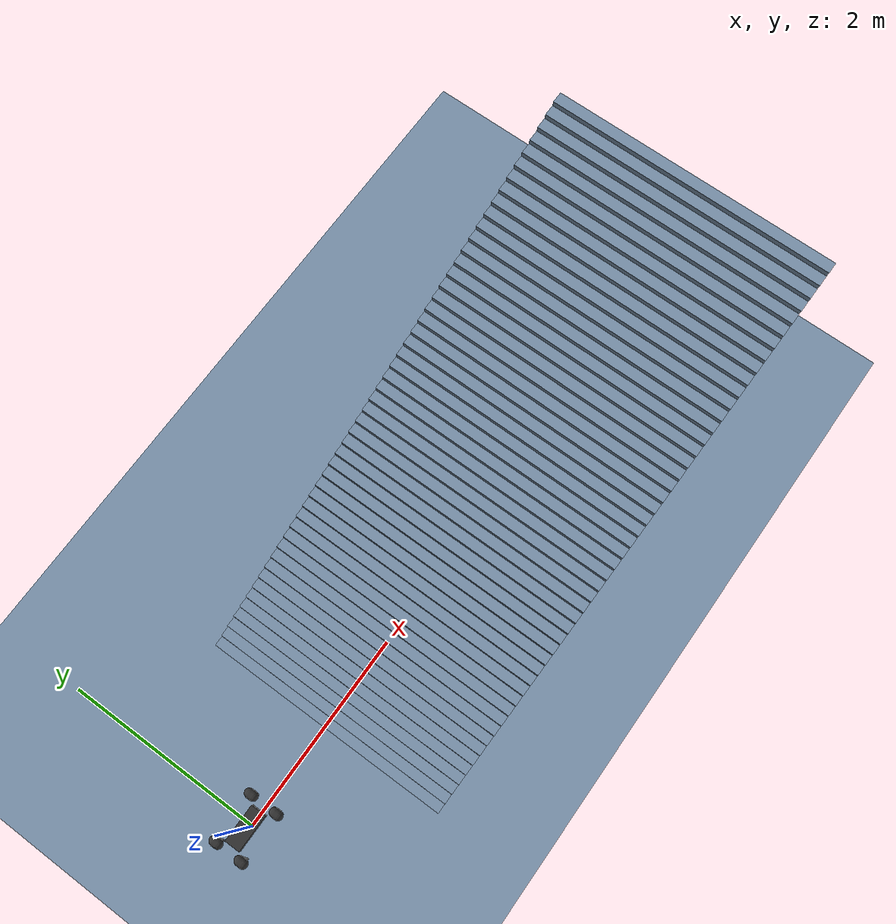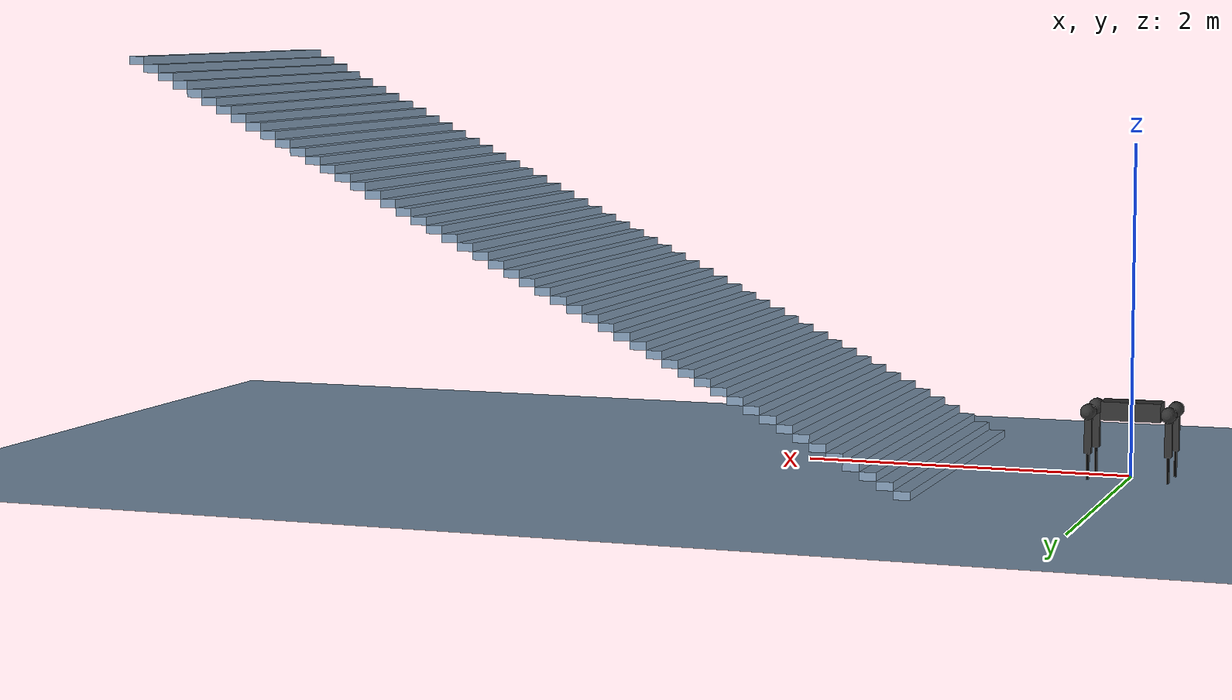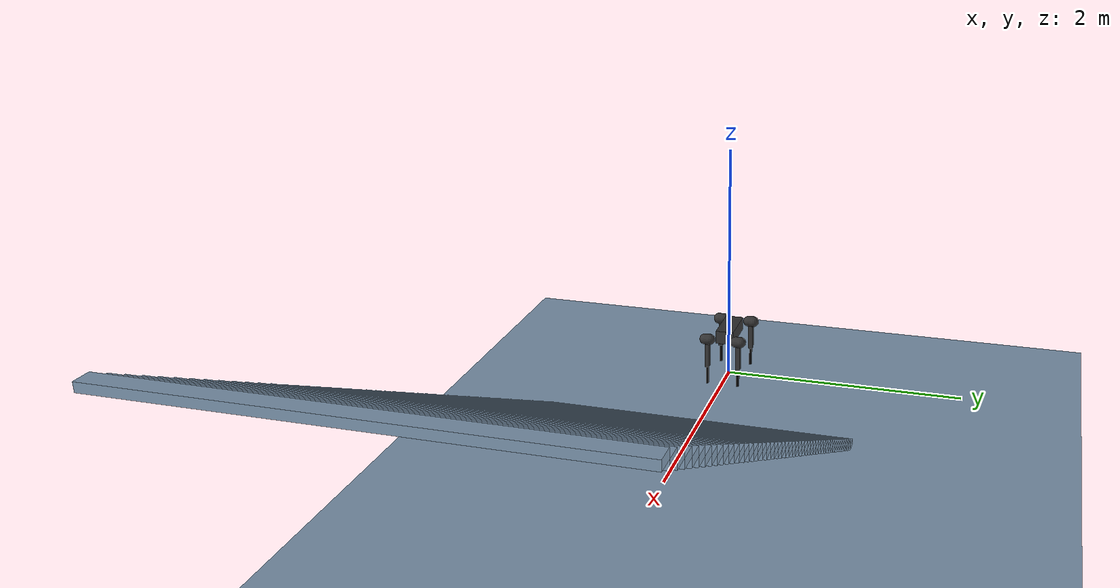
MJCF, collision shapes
<mujoco model="aliengo scene">
  <include file="aliengo.xml" />

  <statistic center="0 0 0.1" extent="0.8" />

  <visual>
    <headlight diffuse="0.6 0.6 0.6" ambient="0.3 0.3 0.3" specular="0 0 0" />
    <rgba haze="0.15 0.25 0.35 1" />
    <global azimuth="-130" elevation="-20" />
  </visual>

  <asset>
    <texture type="skybox" builtin="gradient" rgb1="0.3 0.5 0.7" rgb2="0 0 0" width="512" height="3072" />
    <texture type="2d" name="groundplane" builtin="checker" mark="edge" rgb1="0.2 0.3 0.4" rgb2="0.1 0.2 0.3" markrgb="0.8 0.8 0.8" width="300" height="300" />
    <material name="groundplane" texture="groundplane" texuniform="true" texrepeat="5 5" reflectance="0.2" />
  </asset>

  <worldbody>
    <light pos="0 0 1.5" dir="0 0 -1" directional="true" />
    <geom name="floor" size="0 0 0.05" type="plane" material="groundplane" />
  <geom pos="1.1 0.0 0.025" type="box" size="0.05 1.25 0.025" quat="1.0 0.0 0.0 0.0" /><geom pos="1.2 0.0 0.07500000000000001" type="box" size="0.05 1.25 0.025" quat="1.0 0.0 0.0 0.0" /><geom pos="1.3 0.0 0.125" type="box" size="0.05 1.25 0.025" quat="1.0 0.0 0.0 0.0" /><geom pos="1.4 0.0 0.175" type="box" size="0.05 1.25 0.025" quat="1.0 0.0 0.0 0.0" /><geom pos="1.5 0.0 0.22499999999999998" type="box" size="0.05 1.25 0.025" quat="1.0 0.0 0.0 0.0" /><geom pos="1.6 0.0 0.27499999999999997" type="box" size="0.05 1.25 0.025" quat="1.0 0.0 0.0 0.0" /><geom pos="1.7 0.0 0.32499999999999996" type="box" size="0.05 1.25 0.025" quat="1.0 0.0 0.0 0.0" /><geom pos="1.7999999999999998 0.0 0.37499999999999994" type="box" size="0.05 1.25 0.025" quat="1.0 0.0 0.0 0.0" /><geom pos="1.9 0.0 0.42499999999999993" type="box" size="0.05 1.25 0.025" quat="1.0 0.0 0.0 0.0" /><geom pos="2.0 0.0 0.4749999999999999" type="box" size="0.05 1.25 0.025" quat="1.0 0.0 0.0 0.0" /><geom pos="2.0999999999999996 0.0 0.5249999999999999" type="box" size="0.05 1.25 0.025" quat="1.0 0.0 0.0 0.0" /><geom pos="2.2 0.0 0.575" type="box" size="0.05 1.25 0.025" quat="1.0 0.0 0.0 0.0" /><geom pos="2.3 0.0 0.625" type="box" size="0.05 1.25 0.025" quat="1.0 0.0 0.0 0.0" /><geom pos="2.4000000000000004 0.0 0.675" type="box" size="0.05 1.25 0.025" quat="1.0 0.0 0.0 0.0" /><geom pos="2.5 0.0 0.7250000000000001" type="box" size="0.05 1.25 0.025" quat="1.0 0.0 0.0 0.0" /><geom pos="2.6000000000000005 0.0 0.7750000000000001" type="box" size="0.05 1.25 0.025" quat="1.0 0.0 0.0 0.0" /><geom pos="2.7 0.0 0.8250000000000002" type="box" size="0.05 1.25 0.025" quat="1.0 0.0 0.0 0.0" /><geom pos="2.8000000000000007 0.0 0.8750000000000002" type="box" size="0.05 1.25 0.025" quat="1.0 0.0 0.0 0.0" /><geom pos="2.9000000000000004 0.0 0.9250000000000003" type="box" size="0.05 1.25 0.025" quat="1.0 0.0 0.0 0.0" /><geom pos="3.0000000000000004 0.0 0.9750000000000003" type="box" size="0.05 1.25 0.025" quat="1.0 0.0 0.0 0.0" /><geom pos="3.1000000000000005 0.0 1.0250000000000004" type="box" size="0.05 1.25 0.025" quat="1.0 0.0 0.0 0.0" /><geom pos="3.2000000000000006 0.0 1.0750000000000004" type="box" size="0.05 1.25 0.025" quat="1.0 0.0 0.0 0.0" /><geom pos="3.3000000000000007 0.0 1.1250000000000004" type="box" size="0.05 1.25 0.025" quat="1.0 0.0 0.0 0.0" /><geom pos="3.400000000000001 0.0 1.1750000000000005" type="box" size="0.05 1.25 0.025" quat="1.0 0.0 0.0 0.0" /><geom pos="3.500000000000001 0.0 1.2250000000000005" type="box" size="0.05 1.25 0.025" quat="1.0 0.0 0.0 0.0" /><geom pos="3.600000000000001 0.0 1.2750000000000006" type="box" size="0.05 1.25 0.025" quat="1.0 0.0 0.0 0.0" /><geom pos="3.700000000000001 0.0 1.3250000000000006" type="box" size="0.05 1.25 0.025" quat="1.0 0.0 0.0 0.0" /><geom pos="3.800000000000001 0.0 1.3750000000000007" type="box" size="0.05 1.25 0.025" quat="1.0 0.0 0.0 0.0" /><geom pos="3.9000000000000012 0.0 1.4250000000000007" type="box" size="0.05 1.25 0.025" quat="1.0 0.0 0.0 0.0" /><geom pos="4.000000000000002 0.0 1.4750000000000008" type="box" size="0.05 1.25 0.025" quat="1.0 0.0 0.0 0.0" /><geom pos="4.100000000000001 0.0 1.5250000000000008" type="box" size="0.05 1.25 0.025" quat="1.0 0.0 0.0 0.0" /><geom pos="4.200000000000001 0.0 1.5750000000000008" type="box" size="0.05 1.25 0.025" quat="1.0 0.0 0.0 0.0" /><geom pos="4.300000000000002 0.0 1.6250000000000009" type="box" size="0.05 1.25 0.025" quat="1.0 0.0 0.0 0.0" /><geom pos="4.400000000000002 0.0 1.675000000000001" type="box" size="0.05 1.25 0.025" quat="1.0 0.0 0.0 0.0" /><geom pos="4.500000000000002 0.0 1.725000000000001" type="box" size="0.05 1.25 0.025" quat="1.0 0.0 0.0 0.0" /><geom pos="4.600000000000001 0.0 1.775000000000001" type="box" size="0.05 1.25 0.025" quat="1.0 0.0 0.0 0.0" /><geom pos="4.700000000000002 0.0 1.825000000000001" type="box" size="0.05 1.25 0.025" quat="1.0 0.0 0.0 0.0" /><geom pos="4.8000000000000025 0.0 1.875000000000001" type="box" size="0.05 1.25 0.025" quat="1.0 0.0 0.0 0.0" /><geom pos="4.900000000000002 0.0 1.9250000000000012" type="box" size="0.05 1.25 0.025" quat="1.0 0.0 0.0 0.0" /><geom pos="5.000000000000002 0.0 1.9750000000000012" type="box" size="0.05 1.25 0.025" quat="1.0 0.0 0.0 0.0" /><geom pos="5.100000000000001 0.0 2.0250000000000012" type="box" size="0.05 1.25 0.025" quat="1.0 0.0 0.0 0.0" /><geom pos="5.200000000000001 0.0 2.075000000000001" type="box" size="0.05 1.25 0.025" quat="1.0 0.0 0.0 0.0" /><geom pos="5.300000000000001 0.0 2.125000000000001" type="box" size="0.05 1.25 0.025" quat="1.0 0.0 0.0 0.0" /><geom pos="5.4 0.0 2.1750000000000007" type="box" size="0.05 1.25 0.025" quat="1.0 0.0 0.0 0.0" /><geom pos="5.5 0.0 2.2250000000000005" type="box" size="0.05 1.25 0.025" quat="1.0 0.0 0.0 0.0" /><geom pos="5.6 0.0 2.2750000000000004" type="box" size="0.05 1.25 0.025" quat="1.0 0.0 0.0 0.0" /><geom pos="5.699999999999999 0.0 2.325" type="box" size="0.05 1.25 0.025" quat="1.0 0.0 0.0 0.0" /><geom pos="5.799999999999999 0.0 2.375" type="box" size="0.05 1.25 0.025" quat="1.0 0.0 0.0 0.0" /><geom pos="5.899999999999999 0.0 2.425" type="box" size="0.05 1.25 0.025" quat="1.0 0.0 0.0 0.0" /><geom pos="5.999999999999998 0.0 2.4749999999999996" type="box" size="0.05 1.25 0.025" quat="1.0 0.0 0.0 0.0" /></worldbody>
</mujoco>

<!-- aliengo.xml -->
<mujoco model="aliengo_description">
    <compiler angle="radian" meshdir="./assets/" />
    <option cone="elliptic" impratio="100" />
    <size njmax="500" nconmax="100" />
    <option gravity='0 0 -9.806' timestep='0.002'/>

    <default>
        <geom contype="1" conaffinity="1" friction="0.8 0.02 0.01" rgba="0.5 0.6 0.7 1" margin="0.001" group="0"/>

        <light castshadow="false" diffuse="1 1 1"/>
        <motor ctrlrange="-44.4 44.4" ctrllimited="true"/>
        <camera fovy="60"/>
        <joint damping="3" armature="0.01" frictionloss="0.2" />

    </default>

    <asset>
        <mesh name="trunk" file="trunk.stl" />
        <mesh name="hip" file="hip.stl" />
        <mesh name="thigh_mirror" file="thigh_mirror.stl" />
        <mesh name="calf" file="calf.stl" />
        <mesh name="thigh" file="thigh.stl" />
    </asset>

    <worldbody>
        <light directional="true" diffuse=".8 .8 .8" pos="0 0 10" dir="0 0 -10"/>
        <camera pos="1.794 0.068 0.397" mode="trackcom" xyaxes="0.008 1.000 0.000 -0.155 0.001 0.988"/>
        <camera name="track" mode="trackcom" pos="0 -1.3 1.6" xyaxes="1 0 0 0 0.707 0.707"/>

        <body name="trunk" pos="0 0 0.4">
            <inertial pos="0.00846406 0.00404455 -0.000762916" quat="-3.12625e-05 0.708321 0.00247254 0.705886" mass="13.042" diaginertia="0.174706 0.161175 0.033357" />
            <joint type="free" />
            <geom type="mesh" contype="0" conaffinity="0" group="1" rgba="0.2 0.2 0.2 1" mesh="trunk" />
            <geom size="0.18 0.075 0.056" type="box" rgba="0.2 0.2 0.2 0" />
            <geom size="0.0005 0.0005 0.0005" type="box" contype="0" conaffinity="0" group="1" rgba="0.8 0 0 0" />
            <geom size="0.0005 0.0005 0.0005" type="box" rgba="0.8 0 0 0" />
            <site name="imu" pos="0 0 0"/>

            <body name="FL_hip" pos="0.2399 0.051 0">
                <inertial pos="-0.022191 0.015144 -1.5e-05" quat="-0.0135493 0.706835 0.0117635 0.707151" mass="1.993" diaginertia="0.00558695 0.00491009 0.00290132" />
                <joint name="FL_hip_joint" pos="0 0 0" axis="1 0 0" limited="true" range="-1.22173 1.22173" />
                <geom type="mesh" contype="0" conaffinity="0" group="1" rgba="0.2 0.2 0.2 1" mesh="hip" />
                <geom size="0.046 0.0209" pos="0 0.083 0" quat="0.707107 0.707107 0 0" type="capsule" rgba="0.2 0.2 0.2 0" />
                <body name="FL_thigh" pos="0 0.083 0">
                    <inertial pos="-0.005607 -0.003877 -0.048199" quat="0.717987 -0.031246 -0.0335669 0.694544" mass="0.639" diaginertia="0.0058474 0.00571186 0.000324584" />
                    <joint name="FL_thigh_joint" pos="0 0 0" axis="0 1 0" />
                    <geom type="mesh" contype="0" conaffinity="0" group="1" rgba="0.2 0.2 0.2 1" mesh="thigh" />
                    <geom size="0.125 0.0187 0.0215" pos="0 0 -0.125" quat="0.707107 0 0.707107 0" type="box" rgba="0.2 0.2 0.2 0" />
                    <body name="FL_calf" pos="0 0 -0.25">
                        <inertial pos="0.00215606 4.88427e-05 -0.166671" quat="0.707462 0.00517582 0.00535172 0.706712" mass="0.267" diaginertia="0.00690975 0.00689712 5.4885e-05" />
                        <joint name="FL_calf_joint" pos="0 0 0" axis="0 1 0" limited="true" range="-2.77507 -0.645772" />
                        <geom type="mesh" contype="0" conaffinity="0" group="1" rgba="0 0 0 1" mesh="calf" />
                        <geom size="0.125 0.0104 0.008" pos="0 0 -0.125" quat="0.707107 0 0.707107 0" type="box" rgba="0 0 0 0" />
                        <geom name="FL" size="0.0165" pos="0 0 -0.25" contype="0" conaffinity="0" group="1" rgba="0 0 0 1" />
                        <geom size="0.0265" pos="0 0 -0.25" rgba="0 0 0 1" />
                    </body>
                </body>
            </body>

            <body name="FR_hip" pos="0.2399 -0.051 0">
                <inertial pos="-0.022191 -0.015144 -1.5e-05" quat="0.0135493 0.706835 -0.0117635 0.707151" mass="1.993" diaginertia="0.00558695 0.00491009 0.00290132" />
                <joint name="FR_hip_joint" pos="0 0 0" axis="1 0 0" limited="true" range="-1.22173 1.22173" />
                <geom quat="0 1 0 0" type="mesh" contype="0" conaffinity="0" group="1" rgba="0.2 0.2 0.2 1" mesh="hip" />
                <geom size="0.046 0.0209" pos="0 -0.083 0" quat="0.707107 0.707107 0 0" type="capsule" rgba="0.2 0.2 0.2 0" />
                <body name="FR_thigh" pos="0 -0.083 0">
                    <inertial pos="-0.005607 0.003877 -0.048199" quat="0.694544 -0.0335669 -0.031246 0.717987" mass="0.639" diaginertia="0.0058474 0.00571186 0.000324584" />
                    <joint name="FR_thigh_joint" pos="0 0 0" axis="0 1 0" />
                    <geom type="mesh" contype="0" conaffinity="0" group="1" rgba="0.2 0.2 0.2 1" mesh="thigh_mirror" />
                    <geom size="0.125 0.0187 0.0215" pos="0 0 -0.125" quat="0.707107 0 0.707107 0" type="box" rgba="0.2 0.2 0.2 0" />
                    <body name="FR_calf" pos="0 0 -0.25">
                        <inertial pos="0.00215606 4.88427e-05 -0.166671" quat="0.707462 0.00517582 0.00535172 0.706712" mass="0.267" diaginertia="0.00690975 0.00689712 5.4885e-05" />
                        <joint name="FR_calf_joint" pos="0 0 0" axis="0 1 0" limited="true" range="-2.77507 -0.645772" />
                        <geom type="mesh" contype="0" conaffinity="0" group="1" rgba="0 0 0 1" mesh="calf" />
                        <geom size="0.125 0.0104 0.008" pos="0 0 -0.125" quat="0.707107 0 0.707107 0" type="box" rgba="0 0 0 0" />
                        <geom name="FR" size="0.0165" pos="0 0 -0.25" contype="0" conaffinity="0" group="1" rgba="0 0 0 1" />
                        <geom size="0.0265" pos="0 0 -0.25" rgba="0 0 0 1" />
                    </body>
                </body>
            </body>

            <body name="RL_hip" pos="-0.2399 0.051 0">
                <inertial pos="0.022191 0.015144 -1.5e-05" quat="0.0117635 0.707151 -0.0135493 0.706835" mass="1.993" diaginertia="0.00558695 0.00491009 0.00290132" />
                <joint name="RL_hip_joint" pos="0 0 0" axis="1 0 0" limited="true" range="-1.22173 1.22173" />
                <geom quat="0 0 1 0" type="mesh" contype="0" conaffinity="0" group="1" rgba="0.2 0.2 0.2 1" mesh="hip" />
                <geom size="0.046 0.0209" pos="0 0.083 0" quat="0.707107 0.707107 0 0" type="capsule" rgba="0.2 0.2 0.2 0" />
                <body name="RL_thigh" pos="0 0.083 0">
                    <inertial pos="-0.005607 -0.003877 -0.048199" quat="0.717987 -0.031246 -0.0335669 0.694544" mass="0.639" diaginertia="0.0058474 0.00571186 0.000324584" />
                    <joint name="RL_thigh_joint" pos="0 0 0" axis="0 1 0" />
                    <geom type="mesh" contype="0" conaffinity="0" group="1" rgba="0.2 0.2 0.2 1" mesh="thigh" />
                    <geom size="0.125 0.0187 0.0215" pos="0 0 -0.125" quat="0.707107 0 0.707107 0" type="box" rgba="0.2 0.2 0.2 0" />
                    <body name="RL_calf" pos="0 0 -0.25">
                        <inertial pos="0.00215606 4.88427e-05 -0.166671" quat="0.707462 0.00517582 0.00535172 0.706712" mass="0.267" diaginertia="0.00690975 0.00689712 5.4885e-05" />
                        <joint name="RL_calf_joint" pos="0 0 0" axis="0 1 0" limited="true" range="-2.77507 -0.645772" />
                        <geom type="mesh" contype="0" conaffinity="0" group="1" rgba="0 0 0 1" mesh="calf" />
                        <geom size="0.125 0.0104 0.008" pos="0 0 -0.125" quat="0.707107 0 0.707107 0" type="box" rgba="0 0 0 0" />
                        <geom name="RL" size="0.0165" pos="0 0 -0.25" contype="0" conaffinity="0" group="1" rgba="0 0 0 1" />
                        <geom size="0.0265" pos="0 0 -0.25" rgba="0 0 0 1" />
                    </body>
                </body>
            </body>

            <body name="RR_hip" pos="-0.2399 -0.051 0">
                <inertial pos="0.022191 -0.015144 -1.5e-05" quat="-0.0117635 0.707151 0.0135493 0.706835" mass="1.993" diaginertia="0.00558695 0.00491009 0.00290132" />
                <joint name="RR_hip_joint" pos="0 0 0" axis="1 0 0" limited="true" range="-1.22173 1.22173" />
                <geom quat="0 0 0 -1" type="mesh" contype="0" conaffinity="0" group="1" rgba="0.2 0.2 0.2 1" mesh="hip" />
                <geom size="0.046 0.0209" pos="0 -0.083 0" quat="0.707107 0.707107 0 0" type="capsule" rgba="0.2 0.2 0.2 0" />
                <body name="RR_thigh" pos="0 -0.083 0">
                    <inertial pos="-0.005607 0.003877 -0.048199" quat="0.694544 -0.0335669 -0.031246 0.717987" mass="0.639" diaginertia="0.0058474 0.00571186 0.000324584" />
                    <joint name="RR_thigh_joint" pos="0 0 0" axis="0 1 0" />
                    <geom type="mesh" contype="0" conaffinity="0" group="1" rgba="0.2 0.2 0.2 1" mesh="thigh_mirror" />
                    <geom size="0.125 0.0187 0.0215" pos="0 0 -0.125" quat="0.707107 0 0.707107 0" type="box" rgba="0.2 0.2 0.2 0" />
                    <body name="RR_calf" pos="0 0 -0.25">
                        <inertial pos="0.00215606 4.88427e-05 -0.166671" quat="0.707462 0.00517582 0.00535172 0.706712" mass="0.267" diaginertia="0.00690975 0.00689712 5.4885e-05" />
                        <joint name="RR_calf_joint" pos="0 0 0" axis="0 1 0" limited="true" range="-2.77507 -0.645772" />
                        <geom type="mesh" contype="0" conaffinity="0" group="1" rgba="0 0 0 1" mesh="calf" />
                        <geom size="0.125 0.0104 0.008" pos="0 0 -0.125" quat="0.707107 0 0.707107 0" type="box" rgba="0 0 0 0" />
                        <geom name="RR" size="0.0165" pos="0 0 -0.25" contype="0" conaffinity="0" group="1" rgba="0 0 0 1" />
                        <geom size="0.0265" pos="0 0 -0.25" rgba="0 0 0 1" />
                    </body>
                </body>
            </body>
        </body>
    </worldbody>

    <actuator>

        <motor name="FR_hip"       gear="1" joint="FR_hip_joint"/>
        <motor name="FR_thigh"       gear="1" joint="FR_thigh_joint"/>
        <motor name="FR_calf"       gear="1" joint="FR_calf_joint"/>
        <motor name="FL_hip"     gear="1" joint="FL_hip_joint"/>
        <motor name="FL_thigh"     gear="1" joint="FL_thigh_joint"/>
        <motor name="FL_calf"     gear="1" joint="FL_calf_joint"/>
        <motor name="RR_hip"      gear="1" joint="RR_hip_joint"/>
        <motor name="RR_thigh"   gear="1" joint="RR_thigh_joint"/>
        <motor name="RR_calf"   gear="1" joint="RR_calf_joint" />
        <motor name="RL_hip"      gear="1" joint="RL_hip_joint"/>
        <motor name="RL_thigh"      gear="1" joint="RL_thigh_joint"/>
        <motor name="RL_calf"      gear="1" joint="RL_calf_joint"/>
    </actuator>

    <sensor>

        <jointpos name="FR_hip_pos"     joint="FR_hip_joint"/>
        <jointpos name="FR_thigh_pos"   joint="FR_thigh_joint"/>
        <jointpos name="FR_calf_pos"    joint="FR_calf_joint"/>
        <jointpos name="FL_hip_pos"     joint="FL_hip_joint"/>
        <jointpos name="FL_thigh_pos"   joint="FL_thigh_joint"/>
        <jointpos name="FL_calf_pos"    joint="FL_calf_joint"/>
        <jointpos name="RR_hip_pos"     joint="RR_hip_joint"/>
        <jointpos name="RR_thigh_pos"   joint="RR_thigh_joint"/>
        <jointpos name="RR_calf_pos"    joint="RR_calf_joint" />
        <jointpos name="RL_hip_pos"     joint="RL_hip_joint"/>
        <jointpos name="RL_thigh_pos"   joint="RL_thigh_joint"/>
        <jointpos name="RL_calf_pos"    joint="RL_calf_joint"/>

        <jointvel name="FR_hip_vel"     joint="FR_hip_joint"/>
        <jointvel name="FR_thigh_vel"   joint="FR_thigh_joint"/>
        <jointvel name="FR_calf_vel"    joint="FR_calf_joint"/>
        <jointvel name="FL_hip_vel"     joint="FL_hip_joint"/>
        <jointvel name="FL_thigh_vel"   joint="FL_thigh_joint"/>
        <jointvel name="FL_calf_vel"    joint="FL_calf_joint"/>
        <jointvel name="RR_hip_vel"     joint="RR_hip_joint"/>
        <jointvel name="RR_thigh_vel"   joint="RR_thigh_joint"/>
        <jointvel name="RR_calf_vel"    joint="RR_calf_joint" />
        <jointvel name="RL_hip_vel"     joint="RL_hip_joint"/>
        <jointvel name="RL_thigh_vel"   joint="RL_thigh_joint"/>
        <jointvel name="RL_calf_vel"    joint="RL_calf_joint"/>

        <accelerometer name="Body_Acc" site="imu"/>

        <gyro name="Body_Gyro" site="imu"/>

        <framepos name="Body_Pos" objtype="site" objname="imu"/>

        <framequat name="Body_Quat" objtype="site" objname="imu"/>

    </sensor>

    <keyframe>
        <key name="home" qpos="0 0 0.35 1 0 0 0 0 0.9 -1.8 0 0.9 -1.8 0 0.9 -1.8 0 0.9 -1.8"
        ctrl="0 0.9 -1.8 0 0.9 -1.8 0 0.9 -1.8 0 0.9 -1.8"/>
    </keyframe>
</mujoco>
